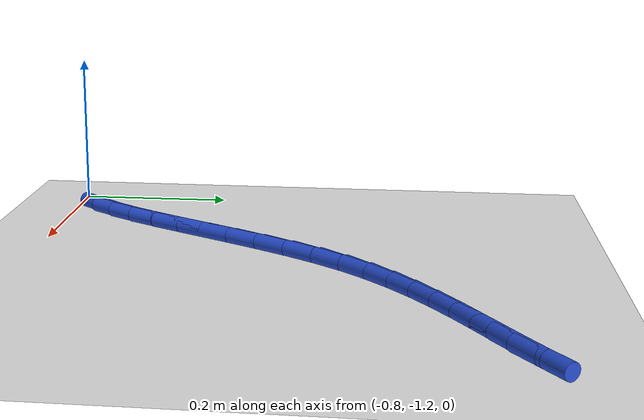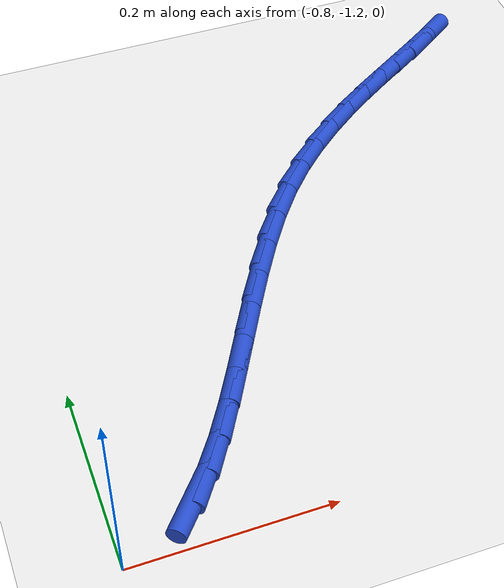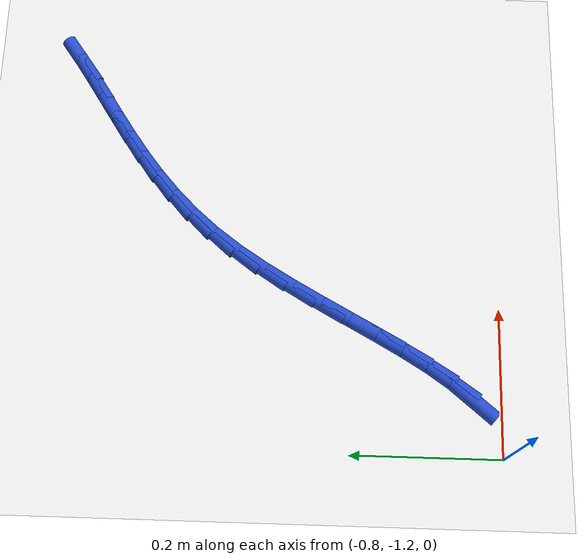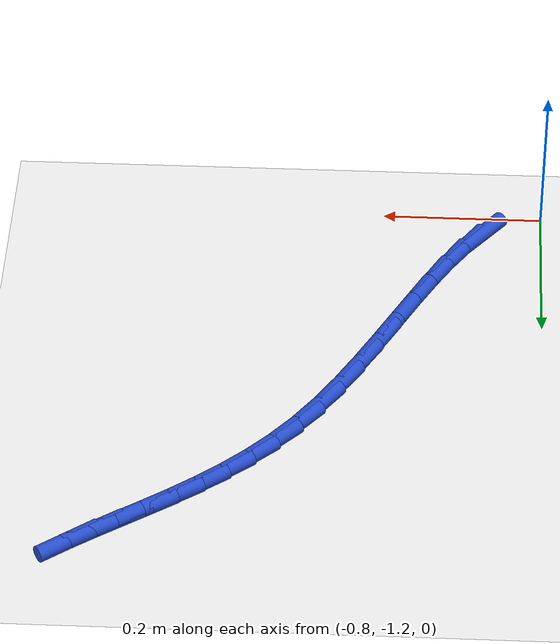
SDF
<sdf version="1.6">
 <world name="default">
  <model name="ground_plane">
   <static>1</static>
   <link name="link">
    <collision name="collision">
     <geometry><plane><normal>0 0 1</normal><size>100 100</size></plane></geometry>
     <surface><friction><ode><mu>100</mu><mu2>50</mu2></ode></friction></surface>
    </collision>
    <visual name="visual">
     <cast_shadows>0</cast_shadows>
     <geometry><plane><normal>0 0 1</normal><size>100 100</size></plane></geometry>
     <material>
      <script><uri>file://media/materials/scripts/gazebo.material</uri><name>Gazebo/WhiteGlow</name></script>
     </material>
    </visual>
   </link>
  </model>
  <model name="line">
   <link name="link_191">
    <pose>-0.723569964445669 -1.1595693096211745 0.01 0 1.57 0.8751431115282968</pose>
    <collision name="collision">
     <geometry><cylinder><radius>0.01</radius><length>0.08</length></cylinder></geometry>
    </collision>
    <visual name="visual">
     <material>
      <script><name>Gazebo/Blue</name><uri>file://media/materials/scripts/gazebo.material</uri></script>
     </material>
     <geometry><cylinder><radius>0.01</radius><length>0.08</length></cylinder></geometry>
    </visual>
   </link>
   <link name="link_192">
    <pose>-0.7027649906466267 -1.1346497362282095 0.01 0 1.57 0.9644208879665708</pose>
    <collision name="collision">
     <geometry><cylinder><radius>0.01</radius><length>0.08</length></cylinder></geometry>
    </collision>
    <visual name="visual">
     <material>
      <script><name>Gazebo/Blue</name><uri>file://media/materials/scripts/gazebo.material</uri></script>
     </material>
     <geometry><cylinder><radius>0.01</radius><length>0.08</length></cylinder></geometry>
    </visual>
   </link>
   <link name="link_193">
    <pose>-0.6822682095287366 -1.1050957678613256 0.01 0 1.57 1.0210389338665031</pose>
    <collision name="collision">
     <geometry><cylinder><radius>0.01</radius><length>0.08</length></cylinder></geometry>
    </collision>
    <visual name="visual">
     <material>
      <script><name>Gazebo/Blue</name><uri>file://media/materials/scripts/gazebo.material</uri></script>
     </material>
     <geometry><cylinder><radius>0.01</radius><length>0.08</length></cylinder></geometry>
    </visual>
   </link>
   <link name="link_194">
    <pose>-0.6618859769697373 -1.0718333953812327 0.01 0 1.57 1.0544927038421572</pose>
    <collision name="collision">
     <geometry><cylinder><radius>0.01</radius><length>0.08</length></cylinder></geometry>
    </collision>
    <visual name="visual">
     <material>
      <script><name>Gazebo/Blue</name><uri>file://media/materials/scripts/gazebo.material</uri></script>
     </material>
     <geometry><cylinder><radius>0.01</radius><length>0.08</length></cylinder></geometry>
    </visual>
   </link>
   <link name="link_195">
    <pose>-0.6414246488473677 -1.0357886096486402 0.01 0 1.57 1.0702165088977682</pose>
    <collision name="collision">
     <geometry><cylinder><radius>0.01</radius><length>0.08</length></cylinder></geometry>
    </collision>
    <visual name="visual">
     <material>
      <script><name>Gazebo/Blue</name><uri>file://media/materials/scripts/gazebo.material</uri></script>
     </material>
     <geometry><cylinder><radius>0.01</radius><length>0.08</length></cylinder></geometry>
    </visual>
   </link>
   <link name="link_196">
    <pose>-0.620690581039367 -0.9978874015242579 0.01 0 1.57 1.071061529816164</pose>
    <collision name="collision">
     <geometry><cylinder><radius>0.01</radius><length>0.08</length></cylinder></geometry>
    </collision>
    <visual name="visual">
     <material>
      <script><name>Gazebo/Blue</name><uri>file://media/materials/scripts/gazebo.material</uri></script>
     </material>
     <geometry><cylinder><radius>0.01</radius><length>0.08</length></cylinder></geometry>
    </visual>
   </link>
   <link name="link_197">
    <pose>-0.5994901294234736 -0.9590557618687945 0.01 0 1.57 1.05810990598737</pose>
    <collision name="collision">
     <geometry><cylinder><radius>0.01</radius><length>0.08</length></cylinder></geometry>
    </collision>
    <visual name="visual">
     <material>
      <script><name>Gazebo/Blue</name><uri>file://media/materials/scripts/gazebo.material</uri></script>
     </material>
     <geometry><cylinder><radius>0.01</radius><length>0.08</length></cylinder></geometry>
    </visual>
   </link>
   <link name="link_198">
    <pose>-0.5776296498774273 -0.9202196815429617 0.01 0 1.57 1.0310474600440354</pose>
    <collision name="collision">
     <geometry><cylinder><radius>0.01</radius><length>0.08</length></cylinder></geometry>
    </collision>
    <visual name="visual">
     <material>
      <script><name>Gazebo/Blue</name><uri>file://media/materials/scripts/gazebo.material</uri></script>
     </material>
     <geometry><cylinder><radius>0.01</radius><length>0.08</length></cylinder></geometry>
    </visual>
   </link>
   <link name="link_199">
    <pose>-0.5549154982789672 -0.8823051514074686 0.01 0 1.57 0.9882493174458842</pose>
    <collision name="collision">
     <geometry><cylinder><radius>0.01</radius><length>0.08</length></cylinder></geometry>
    </collision>
    <visual name="visual">
     <material>
      <script><name>Gazebo/Blue</name><uri>file://media/materials/scripts/gazebo.material</uri></script>
     </material>
     <geometry><cylinder><radius>0.01</radius><length>0.08</length></cylinder></geometry>
    </visual>
   </link>
   <link name="link_200">
    <pose>-0.5311540305058318 -0.8462381623230241 0.01 0 1.57 0.9267087196702556</pose>
    <collision name="collision">
     <geometry><cylinder><radius>0.01</radius><length>0.08</length></cylinder></geometry>
    </collision>
    <visual name="visual">
     <material>
      <script><name>Gazebo/Blue</name><uri>file://media/materials/scripts/gazebo.material</uri></script>
     </material>
     <geometry><cylinder><radius>0.01</radius><length>0.08</length></cylinder></geometry>
    </visual>
   </link>
   <link name="link_201">
    <pose>-0.5061521554051417 -0.8129430291382049 0.01 0 1.57 0.8505469258738884</pose>
    <collision name="collision">
     <geometry><cylinder><radius>0.01</radius><length>0.08</length></cylinder></geometry>
    </collision>
    <visual name="visual">
     <material>
      <script><name>Gazebo/Blue</name><uri>file://media/materials/scripts/gazebo.material</uri></script>
     </material>
     <geometry><cylinder><radius>0.01</radius><length>0.08</length></cylinder></geometry>
    </visual>
   </link>
   <link name="link_202">
    <pose>-0.47984302552355773 -0.7829614307383904 0.01 0 1.57 0.7779874202171757</pose>
    <collision name="collision">
     <geometry><cylinder><radius>0.01</radius><length>0.08</length></cylinder></geometry>
    </collision>
    <visual name="visual">
     <material>
      <script><name>Gazebo/Blue</name><uri>file://media/materials/scripts/gazebo.material</uri></script>
     </material>
     <geometry><cylinder><radius>0.01</radius><length>0.08</length></cylinder></geometry>
    </visual>
   </link>
   <link name="link_203">
    <pose>-0.45244602077912244 -0.7559675105490197 0.01 0 1.57 0.7138696055674525</pose>
    <collision name="collision">
     <geometry><cylinder><radius>0.01</radius><length>0.08</length></cylinder></geometry>
    </collision>
    <visual name="visual">
     <material>
      <script><name>Gazebo/Blue</name><uri>file://media/materials/scripts/gazebo.material</uri></script>
     </material>
     <geometry><cylinder><radius>0.01</radius><length>0.08</length></cylinder></geometry>
    </visual>
   </link>
   <link name="link_204">
    <pose>-0.424219966406557 -0.731515855955936 0.01 0 1.57 0.6601271658513442</pose>
    <collision name="collision">
     <geometry><cylinder><radius>0.01</radius><length>0.08</length></cylinder></geometry>
    </collision>
    <visual name="visual">
     <material>
      <script><name>Gazebo/Blue</name><uri>file://media/materials/scripts/gazebo.material</uri></script>
     </material>
     <geometry><cylinder><radius>0.01</radius><length>0.08</length></cylinder></geometry>
    </visual>
   </link>
   <link name="link_205">
    <pose>-0.3954236876405829 -0.7091610543449829 0.01 0 1.57 0.6182484478149661</pose>
    <collision name="collision">
     <geometry><cylinder><radius>0.01</radius><length>0.08</length></cylinder></geometry>
    </collision>
    <visual name="visual">
     <material>
      <script><name>Gazebo/Blue</name><uri>file://media/materials/scripts/gazebo.material</uri></script>
     </material>
     <geometry><cylinder><radius>0.01</radius><length>0.08</length></cylinder></geometry>
    </visual>
   </link>
   <link name="link_206">
    <pose>-0.3663160097159209 -0.688457693102003 0.01 0 1.57 0.5893585718590513</pose>
    <collision name="collision">
     <geometry><cylinder><radius>0.01</radius><length>0.08</length></cylinder></geometry>
    </collision>
    <visual name="visual">
     <material>
      <script><name>Gazebo/Blue</name><uri>file://media/materials/scripts/gazebo.material</uri></script>
     </material>
     <geometry><cylinder><radius>0.01</radius><length>0.08</length></cylinder></geometry>
    </visual>
   </link>
   <link name="link_207">
    <pose>-0.33715575786729357 -0.6689603596128408 0.01 0 1.57 0.5743480853331723</pose>
    <collision name="collision">
     <geometry><cylinder><radius>0.01</radius><length>0.08</length></cylinder></geometry>
    </collision>
    <visual name="visual">
     <material>
      <script><name>Gazebo/Blue</name><uri>file://media/materials/scripts/gazebo.material</uri></script>
     </material>
     <geometry><cylinder><radius>0.01</radius><length>0.08</length></cylinder></geometry>
    </visual>
   </link>
   <link name="link_208">
    <pose>-0.3082017573294216 -0.6502236412633389 0.01 0 1.57 0.5739956440594238</pose>
    <collision name="collision">
     <geometry><cylinder><radius>0.01</radius><length>0.08</length></cylinder></geometry>
    </collision>
    <visual name="visual">
     <material>
      <script><name>Gazebo/Blue</name><uri>file://media/materials/scripts/gazebo.material</uri></script>
     </material>
     <geometry><cylinder><radius>0.01</radius><length>0.08</length></cylinder></geometry>
    </visual>
   </link>
   <link name="link_209">
    <pose>-0.2797128333370265 -0.6318021254393406 0.01 0 1.57 0.5890419291979403</pose>
    <collision name="collision">
     <geometry><cylinder><radius>0.01</radius><length>0.08</length></cylinder></geometry>
    </collision>
    <visual name="visual">
     <material>
      <script><name>Gazebo/Blue</name><uri>file://media/materials/scripts/gazebo.material</uri></script>
     </material>
     <geometry><cylinder><radius>0.01</radius><length>0.08</length></cylinder></geometry>
    </visual>
   </link>
   <link name="link_210">
    <pose>-0.25194781112482884 -0.6132503995266886 0.01 0 1.57 0.6201787167436472</pose>
    <collision name="collision">
     <geometry><cylinder><radius>0.01</radius><length>0.08</length></cylinder></geometry>
    </collision>
    <visual name="visual">
     <material>
      <script><name>Gazebo/Blue</name><uri>file://media/materials/scripts/gazebo.material</uri></script>
     </material>
     <geometry><cylinder><radius>0.01</radius><length>0.08</length></cylinder></geometry>
    </visual>
   </link>
  </model>
 </world>
</sdf>
